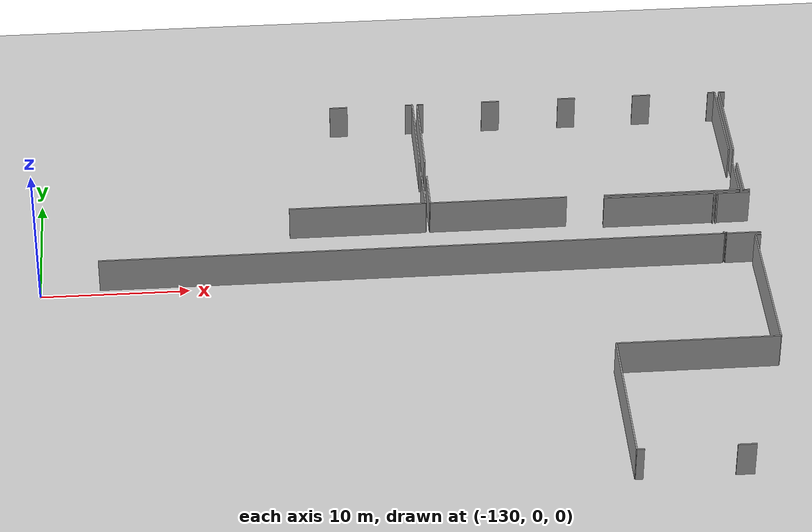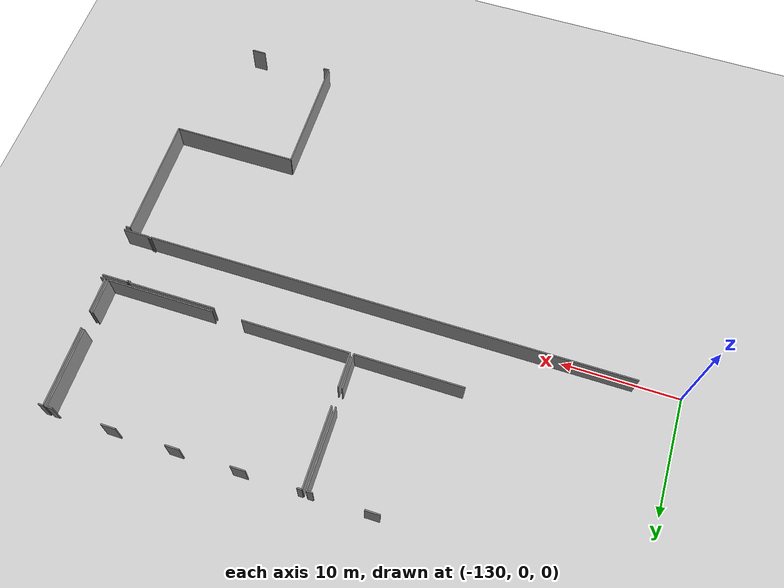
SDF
<sdf version="1.6">
 <world name="default">
  <model name="ground_plane">
   <static>1</static>
   <link name="link">
    <collision name="collision">
     <geometry><plane><normal>0 0 1</normal><size>100 100</size></plane></geometry>
     <surface><friction><ode><mu>100</mu><mu2>50</mu2></ode></friction></surface>
    </collision>
    <visual name="visual">
     <cast_shadows>0</cast_shadows>
     <geometry><plane><normal>0 0 1</normal><size>100 100</size></plane></geometry>
     <material>
      <script><uri>file://media/materials/scripts/gazebo.material</uri><name>Gazebo/Grey</name></script>
     </material>
    </visual>
   </link>
  </model>
  <model name="50037765_PLAN3">
   <static>1</static>
   <link name="Wall_4">
    <collision name="Wall_4_Collision">
     <geometry><box><size>9.34466127382 0.1 2.5</size></box></geometry>
     <pose>4.67233063691 0 1.25 0 0 0</pose>
    </collision>
    <visual name="Wall_4_Visual">
     <pose>4.67233063691 0 1.25 0 0 0</pose>
     <geometry><box><size>9.34466127382 0.1 2.5</size></box></geometry>
     <material>
      <script><uri>file://media/materials/scripts/gazebo.material</uri><name>Gazebo/Grey</name></script>
      <ambient>1 1 1 1</ambient>
     </material>
    </visual>
    <pose>32.053403148 -15.8197103623 0 0 0 3.14159265359</pose>
   </link>
   <link name="Wall_10">
    <collision name="Wall_10_Collision">
     <geometry><box><size>1.25107232047 0.1 2.5</size></box></geometry>
     <pose>0.625536160235 0 1.25 0 0 0</pose>
    </collision>
    <visual name="Wall_10_Visual">
     <pose>0.625536160235 0 1.25 0 0 0</pose>
     <geometry><box><size>1.25107232047 0.1 2.5</size></box></geometry>
     <material>
      <script><uri>file://media/materials/scripts/gazebo.material</uri><name>Gazebo/Grey</name></script>
      <ambient>1 1 1 1</ambient>
     </material>
    </visual>
    <pose>26.1226289803 -4.19345614448 0 0 0 0.0</pose>
   </link>
   <link name="Wall_11">
    <collision name="Wall_11_Collision">
     <geometry><box><size>0.496921248785 0.1 2.5</size></box></geometry>
     <pose>0.248460624392 0 1.25 0 0 0</pose>
    </collision>
    <visual name="Wall_11_Visual">
     <pose>0.248460624392 0 1.25 0 0 0</pose>
     <geometry><box><size>0.496921248785 0.1 2.5</size></box></geometry>
     <material>
      <script><uri>file://media/materials/scripts/gazebo.material</uri><name>Gazebo/Grey</name></script>
      <ambient>1 1 1 1</ambient>
     </material>
    </visual>
    <pose>31.5046292472 -4.19345614448 0 0 0 0.0</pose>
   </link>
   <link name="Wall_12">
    <collision name="Wall_12_Collision">
     <geometry><box><size>6.9729870559 0.1 2.5</size></box></geometry>
     <pose>3.48649352795 0 1.25 0 0 0</pose>
    </collision>
    <visual name="Wall_12_Visual">
     <pose>3.48649352795 0 1.25 0 0 0</pose>
     <geometry><box><size>6.9729870559 0.1 2.5</size></box></geometry>
     <material>
      <script><uri>file://media/materials/scripts/gazebo.material</uri><name>Gazebo/Grey</name></script>
      <ambient>1 1 1 1</ambient>
     </material>
    </visual>
    <pose>32.001550496 -4.19345614448 0 0 0 -1.57079632679</pose>
   </link>
   <link name="Wall_13">
    <collision name="Wall_13_Collision">
     <geometry><box><size>3.08793038245 0.1 2.5</size></box></geometry>
     <pose>1.54396519122 0 1.25 0 0 0</pose>
    </collision>
    <visual name="Wall_13_Visual">
     <pose>1.54396519122 0 1.25 0 0 0</pose>
     <geometry><box><size>3.08793038245 0.1 2.5</size></box></geometry>
     <material>
      <script><uri>file://media/materials/scripts/gazebo.material</uri><name>Gazebo/Grey</name></script>
      <ambient>1 1 1 1</ambient>
     </material>
    </visual>
    <pose>32.001550496 -12.7322153664 0 0 0 -1.55400349704</pose>
   </link>
   <link name="Wall_14">
    <collision name="Wall_14_Collision">
     <geometry><box><size>9.35533681983 0.1 2.5</size></box></geometry>
     <pose>4.67766840992 0 1.25 0 0 0</pose>
    </collision>
    <visual name="Wall_14_Visual">
     <pose>4.67766840992 0 1.25 0 0 0</pose>
     <geometry><box><size>9.35533681983 0.1 2.5</size></box></geometry>
     <material>
      <script><uri>file://media/materials/scripts/gazebo.material</uri><name>Gazebo/Grey</name></script>
      <ambient>1 1 1 1</ambient>
     </material>
    </visual>
    <pose>53.6591831936 -15.8190749131 0 0 0 3.14159265359</pose>
   </link>
   <link name="Wall_15">
    <collision name="Wall_15_Collision">
     <geometry><box><size>9.3924470512 0.1 2.5</size></box></geometry>
     <pose>4.6962235256 0 1.25 0 0 0</pose>
    </collision>
    <visual name="Wall_15_Visual">
     <pose>4.6962235256 0 1.25 0 0 0</pose>
     <geometry><box><size>9.3924470512 0.1 2.5</size></box></geometry>
     <material>
      <script><uri>file://media/materials/scripts/gazebo.material</uri><name>Gazebo/Grey</name></script>
      <ambient>1 1 1 1</ambient>
     </material>
    </visual>
    <pose>41.7422236908 -15.8190749131 0 0 0 3.14159265359</pose>
   </link>
   <link name="Wall_16">
    <collision name="Wall_16_Collision">
     <geometry><box><size>3.05821349821 0.1 2.5</size></box></geometry>
     <pose>1.52910674911 0 1.25 0 0 0</pose>
    </collision>
    <visual name="Wall_16_Visual">
     <pose>1.52910674911 0 1.25 0 0 0</pose>
     <geometry><box><size>3.05821349821 0.1 2.5</size></box></geometry>
     <material>
      <script><uri>file://media/materials/scripts/gazebo.material</uri><name>Gazebo/Grey</name></script>
      <ambient>1 1 1 1</ambient>
     </material>
    </visual>
    <pose>32.3497766396 -15.8190749131 0 0 0 1.57079632679</pose>
   </link>
   <link name="Wall_17">
    <collision name="Wall_17_Collision">
     <geometry><box><size>6.95809212742 0.1 2.5</size></box></geometry>
     <pose>3.47904606371 0 1.25 0 0 0</pose>
    </collision>
    <visual name="Wall_17_Visual">
     <pose>3.47904606371 0 1.25 0 0 0</pose>
     <geometry><box><size>6.95809212742 0.1 2.5</size></box></geometry>
     <material>
      <script><uri>file://media/materials/scripts/gazebo.material</uri><name>Gazebo/Grey</name></script>
      <ambient>1 1 1 1</ambient>
     </material>
    </visual>
    <pose>32.3497766396 -11.1520312133 0 0 0 1.57079632679</pose>
   </link>
   <link name="Wall_18">
    <collision name="Wall_18_Collision">
     <geometry><box><size>0.425750942053 0.1 2.5</size></box></geometry>
     <pose>0.212875471027 0 1.25 0 0 0</pose>
    </collision>
    <visual name="Wall_18_Visual">
     <pose>0.212875471027 0 1.25 0 0 0</pose>
     <geometry><box><size>0.425750942053 0.1 2.5</size></box></geometry>
     <material>
      <script><uri>file://media/materials/scripts/gazebo.material</uri><name>Gazebo/Grey</name></script>
      <ambient>1 1 1 1</ambient>
     </material>
    </visual>
    <pose>32.3497766396 -4.19393908584 0 0 0 0.0</pose>
   </link>
   <link name="Wall_19">
    <collision name="Wall_19_Collision">
     <geometry><box><size>1.25463083581 0.1 2.5</size></box></geometry>
     <pose>0.627315417903 0 1.25 0 0 0</pose>
    </collision>
    <visual name="Wall_19_Visual">
     <pose>0.627315417903 0 1.25 0 0 0</pose>
     <geometry><box><size>1.25463083581 0.1 2.5</size></box></geometry>
     <material>
      <script><uri>file://media/materials/scripts/gazebo.material</uri><name>Gazebo/Grey</name></script>
      <ambient>1 1 1 1</ambient>
     </material>
    </visual>
    <pose>36.9364487288 -4.19393908584 0 0 0 0.0</pose>
   </link>
   <link name="Wall_20">
    <collision name="Wall_20_Collision">
     <geometry><box><size>1.22972122845 0.1 2.5</size></box></geometry>
     <pose>0.614860614225 0 1.25 0 0 0</pose>
    </collision>
    <visual name="Wall_20_Visual">
     <pose>0.614860614225 0 1.25 0 0 0</pose>
     <geometry><box><size>1.22972122845 0.1 2.5</size></box></geometry>
     <material>
      <script><uri>file://media/materials/scripts/gazebo.material</uri><name>Gazebo/Grey</name></script>
      <ambient>1 1 1 1</ambient>
     </material>
    </visual>
    <pose>42.3789437564 -4.19393908584 0 0 0 0.0</pose>
   </link>
   <link name="Wall_21">
    <collision name="Wall_21_Collision">
     <geometry><box><size>1.26352712415 0.1 2.5</size></box></geometry>
     <pose>0.631763562074 0 1.25 0 0 0</pose>
    </collision>
    <visual name="Wall_21_Visual">
     <pose>0.631763562074 0 1.25 0 0 0</pose>
     <geometry><box><size>1.26352712415 0.1 2.5</size></box></geometry>
     <material>
      <script><uri>file://media/materials/scripts/gazebo.material</uri><name>Gazebo/Grey</name></script>
      <ambient>1 1 1 1</ambient>
     </material>
    </visual>
    <pose>47.7324759006 -4.19393908584 0 0 0 0.0</pose>
   </link>
   <link name="Wall_22">
    <collision name="Wall_22_Collision">
     <geometry><box><size>0.498700506453 0.1 2.5</size></box></geometry>
     <pose>0.249350253226 0 1.25 0 0 0</pose>
    </collision>
    <visual name="Wall_22_Visual">
     <pose>0.249350253226 0 1.25 0 0 0</pose>
     <geometry><box><size>0.498700506453 0.1 2.5</size></box></geometry>
     <material>
      <script><uri>file://media/materials/scripts/gazebo.material</uri><name>Gazebo/Grey</name></script>
      <ambient>1 1 1 1</ambient>
     </material>
    </visual>
    <pose>53.1475195242 -4.19393908584 0 0 0 0.0</pose>
   </link>
   <link name="Wall_23">
    <collision name="Wall_23_Collision">
     <geometry><box><size>6.90618863944 0.1 2.5</size></box></geometry>
     <pose>3.45309431972 0 1.25 0 0 0</pose>
    </collision>
    <visual name="Wall_23_Visual">
     <pose>3.45309431972 0 1.25 0 0 0</pose>
     <geometry><box><size>6.90618863944 0.1 2.5</size></box></geometry>
     <material>
      <script><uri>file://media/materials/scripts/gazebo.material</uri><name>Gazebo/Grey</name></script>
      <ambient>1 1 1 1</ambient>
     </material>
    </visual>
    <pose>53.6462200306 -4.19393908584 0 0 0 -1.57079632679</pose>
   </link>
   <link name="Wall_24">
    <collision name="Wall_24_Collision">
     <geometry><box><size>3.12758057625 0.1 2.5</size></box></geometry>
     <pose>1.56379028812 0 1.25 0 0 0</pose>
    </collision>
    <visual name="Wall_24_Visual">
     <pose>1.56379028812 0 1.25 0 0 0</pose>
     <geometry><box><size>3.12758057625 0.1 2.5</size></box></geometry>
     <material>
      <script><uri>file://media/materials/scripts/gazebo.material</uri><name>Gazebo/Grey</name></script>
      <ambient>1 1 1 1</ambient>
     </material>
    </visual>
    <pose>53.6462200306 -12.6915212018 0 0 0 -1.56665152547</pose>
   </link>
   <link name="Wall_40">
    <collision name="Wall_40_Collision">
     <geometry><box><size>42.2044239971 0.1 2.5</size></box></geometry>
     <pose>21.1022119986 0 1.25 0 0 0</pose>
    </collision>
    <visual name="Wall_40_Visual">
     <pose>21.1022119986 0 1.25 0 0 0</pose>
     <geometry><box><size>42.2044239971 0.1 2.5</size></box></geometry>
     <material>
      <script><uri>file://media/materials/scripts/gazebo.material</uri><name>Gazebo/Grey</name></script>
      <ambient>1 1 1 1</ambient>
     </material>
    </visual>
    <pose>51.9152564991 -20.6463788929 0 0 0 3.14159265359</pose>
   </link>
   <link name="Wall_49">
    <collision name="Wall_49_Collision">
     <geometry><box><size>7.59895532157 0.1 2.5</size></box></geometry>
     <pose>3.79947766078 0 1.25 0 0 0</pose>
    </collision>
    <visual name="Wall_49_Visual">
     <pose>3.79947766078 0 1.25 0 0 0</pose>
     <geometry><box><size>7.59895532157 0.1 2.5</size></box></geometry>
     <material>
      <script><uri>file://media/materials/scripts/gazebo.material</uri><name>Gazebo/Grey</name></script>
      <ambient>1 1 1 1</ambient>
     </material>
    </visual>
    <pose>44.2761407901 -16.1168718108 0 0 0 0.0</pose>
   </link>
   <link name="Wall_50">
    <collision name="Wall_50_Collision">
     <geometry><box><size>0.15380411644 0.1 2.5</size></box></geometry>
     <pose>0.0769020582199 0 1.25 0 0 0</pose>
    </collision>
    <visual name="Wall_50_Visual">
     <pose>0.0769020582199 0 1.25 0 0 0</pose>
     <geometry><box><size>0.15380411644 0.1 2.5</size></box></geometry>
     <material>
      <script><uri>file://media/materials/scripts/gazebo.material</uri><name>Gazebo/Grey</name></script>
      <ambient>1 1 1 1</ambient>
     </material>
    </visual>
    <pose>51.8750961117 -16.1168718108 0 0 0 -1.57079632679</pose>
   </link>
   <link name="Wall_51">
    <collision name="Wall_51_Collision">
     <geometry><box><size>0.180666680389 0.1 2.5</size></box></geometry>
     <pose>0.0903333401947 0 1.25 0 0 0</pose>
    </collision>
    <visual name="Wall_51_Visual">
     <pose>0.0903333401947 0 1.25 0 0 0</pose>
     <geometry><box><size>0.180666680389 0.1 2.5</size></box></geometry>
     <material>
      <script><uri>file://media/materials/scripts/gazebo.material</uri><name>Gazebo/Grey</name></script>
      <ambient>1 1 1 1</ambient>
     </material>
    </visual>
    <pose>51.8750961117 -20.4702323838 0 0 0 -1.34663376916</pose>
   </link>
   <link name="Wall_59">
    <collision name="Wall_59_Collision">
     <geometry><box><size>2.31862692144 0.1 2.5</size></box></geometry>
     <pose>1.15931346072 0 1.25 0 0 0</pose>
    </collision>
    <visual name="Wall_59_Visual">
     <pose>1.15931346072 0 1.25 0 0 0</pose>
     <geometry><box><size>2.31862692144 0.1 2.5</size></box></geometry>
     <material>
      <script><uri>file://media/materials/scripts/gazebo.material</uri><name>Gazebo/Grey</name></script>
      <ambient>1 1 1 1</ambient>
     </material>
    </visual>
    <pose>54.3917289936 -20.6445996353 0 0 0 3.14159265359</pose>
   </link>
   <link name="Wall_60">
    <collision name="Wall_60_Collision">
     <geometry><box><size>0.143103152463 0.1 2.5</size></box></geometry>
     <pose>0.0715515762317 0 1.25 0 0 0</pose>
    </collision>
    <visual name="Wall_60_Visual">
     <pose>0.0715515762317 0 1.25 0 0 0</pose>
     <geometry><box><size>0.143103152463 0.1 2.5</size></box></geometry>
     <material>
      <script><uri>file://media/materials/scripts/gazebo.material</uri><name>Gazebo/Grey</name></script>
      <ambient>1 1 1 1</ambient>
     </material>
    </visual>
    <pose>52.0731020722 -20.6445996353 0 0 0 1.57079632679</pose>
   </link>
   <link name="Wall_61">
    <collision name="Wall_61_Collision">
     <geometry><box><size>0.153753280506 0.1 2.5</size></box></geometry>
     <pose>0.0768766402532 0 1.25 0 0 0</pose>
    </collision>
    <visual name="Wall_61_Visual">
     <pose>0.0768766402532 0 1.25 0 0 0</pose>
     <geometry><box><size>0.153753280506 0.1 2.5</size></box></geometry>
     <material>
      <script><uri>file://media/materials/scripts/gazebo.material</uri><name>Gazebo/Grey</name></script>
      <ambient>1 1 1 1</ambient>
     </material>
    </visual>
    <pose>52.0731020722 -16.281605653 0 0 0 1.57079632679</pose>
   </link>
   <link name="Wall_62">
    <collision name="Wall_62_Collision">
     <geometry><box><size>2.25254020805 0.1 2.5</size></box></geometry>
     <pose>1.12627010402 0 1.25 0 0 0</pose>
    </collision>
    <visual name="Wall_62_Visual">
     <pose>1.12627010402 0 1.25 0 0 0</pose>
     <geometry><box><size>2.25254020805 0.1 2.5</size></box></geometry>
     <material>
      <script><uri>file://media/materials/scripts/gazebo.material</uri><name>Gazebo/Grey</name></script>
      <ambient>1 1 1 1</ambient>
     </material>
    </visual>
    <pose>52.0731020722 -16.1278523724 0 0 0 0.0</pose>
   </link>
   <link name="Wall_68">
    <collision name="Wall_68_Collision">
     <geometry><box><size>0.424480043719 0.1 2.5</size></box></geometry>
     <pose>0.212240021859 0 1.25 0 0 0</pose>
    </collision>
    <visual name="Wall_68_Visual">
     <pose>0.212240021859 0 1.25 0 0 0</pose>
     <geometry><box><size>0.424480043719 0.1 2.5</size></box></geometry>
     <material>
      <script><uri>file://media/materials/scripts/gazebo.material</uri><name>Gazebo/Grey</name></script>
      <ambient>1 1 1 1</ambient>
     </material>
    </visual>
    <pose>54.3721571593 -15.8521945237 0 0 0 3.14159265359</pose>
   </link>
   <link name="Wall_69">
    <collision name="Wall_69_Collision">
     <geometry><box><size>3.11997915727 0.1 2.5</size></box></geometry>
     <pose>1.55998957863 0 1.25 0 0 0</pose>
    </collision>
    <visual name="Wall_69_Visual">
     <pose>1.55998957863 0 1.25 0 0 0</pose>
     <geometry><box><size>3.11997915727 0.1 2.5</size></box></geometry>
     <material>
      <script><uri>file://media/materials/scripts/gazebo.material</uri><name>Gazebo/Grey</name></script>
      <ambient>1 1 1 1</ambient>
     </material>
    </visual>
    <pose>53.9476771156 -15.8521945237 0 0 0 1.57079632679</pose>
   </link>
   <link name="Wall_70">
    <collision name="Wall_70_Collision">
     <geometry><box><size>6.96681048999 0.1 2.5</size></box></geometry>
     <pose>3.483405245 0 1.25 0 0 0</pose>
    </collision>
    <visual name="Wall_70_Visual">
     <pose>3.483405245 0 1.25 0 0 0</pose>
     <geometry><box><size>6.96681048999 0.1 2.5</size></box></geometry>
     <material>
      <script><uri>file://media/materials/scripts/gazebo.material</uri><name>Gazebo/Grey</name></script>
      <ambient>1 1 1 1</ambient>
     </material>
    </visual>
    <pose>53.9476771156 -11.1712471961 0 0 0 1.57079632679</pose>
   </link>
   <link name="Wall_71">
    <collision name="Wall_71_Collision">
     <geometry><box><size>0.432867972727 0.1 2.5</size></box></geometry>
     <pose>0.216433986363 0 1.25 0 0 0</pose>
    </collision>
    <visual name="Wall_71_Visual">
     <pose>0.216433986363 0 1.25 0 0 0</pose>
     <geometry><box><size>0.432867972727 0.1 2.5</size></box></geometry>
     <material>
      <script><uri>file://media/materials/scripts/gazebo.material</uri><name>Gazebo/Grey</name></script>
      <ambient>1 1 1 1</ambient>
     </material>
    </visual>
    <pose>53.9476771156 -4.20443670609 0 0 0 0.0</pose>
   </link>
   <link name="Wall_88">
    <collision name="Wall_88_Collision">
     <geometry><box><size>0.39245340569 0.1 2.5</size></box></geometry>
     <pose>0.196226702845 0 1.25 0 0 0</pose>
    </collision>
    <visual name="Wall_88_Visual">
     <pose>0.196226702845 0 1.25 0 0 0</pose>
     <geometry><box><size>0.39245340569 0.1 2.5</size></box></geometry>
     <material>
      <script><uri>file://media/materials/scripts/gazebo.material</uri><name>Gazebo/Grey</name></script>
      <ambient>1 1 1 1</ambient>
     </material>
    </visual>
    <pose>54.3612274336 -20.9458025405 0 0 0 3.14159265359</pose>
   </link>
   <link name="Wall_89">
    <collision name="Wall_89_Collision">
     <geometry><box><size>10.7886559615 0.1 2.5</size></box></geometry>
     <pose>5.39432798073 0 1.25 0 0 0</pose>
    </collision>
    <visual name="Wall_89_Visual">
     <pose>5.39432798073 0 1.25 0 0 0</pose>
     <geometry><box><size>10.7886559615 0.1 2.5</size></box></geometry>
     <material>
      <script><uri>file://media/materials/scripts/gazebo.material</uri><name>Gazebo/Grey</name></script>
      <ambient>1 1 1 1</ambient>
     </material>
    </visual>
    <pose>53.9687740279 -20.9458025405 0 0 0 -1.57079632679</pose>
   </link>
   <link name="Wall_90">
    <collision name="Wall_90_Collision">
     <geometry><box><size>10.7840807275 0.1 2.5</size></box></geometry>
     <pose>5.39204036373 0 1.25 0 0 0</pose>
    </collision>
    <visual name="Wall_90_Visual">
     <pose>5.39204036373 0 1.25 0 0 0</pose>
     <geometry><box><size>10.7840807275 0.1 2.5</size></box></geometry>
     <material>
      <script><uri>file://media/materials/scripts/gazebo.material</uri><name>Gazebo/Grey</name></script>
      <ambient>1 1 1 1</ambient>
     </material>
    </visual>
    <pose>53.9687740279 -31.734458502 0 0 0 3.14159265359</pose>
   </link>
   <link name="Wall_91">
    <collision name="Wall_91_Collision">
     <geometry><box><size>10.4572056758 0.1 2.5</size></box></geometry>
     <pose>5.22860283792 0 1.25 0 0 0</pose>
    </collision>
    <visual name="Wall_91_Visual">
     <pose>5.22860283792 0 1.25 0 0 0</pose>
     <geometry><box><size>10.4572056758 0.1 2.5</size></box></geometry>
     <material>
      <script><uri>file://media/materials/scripts/gazebo.material</uri><name>Gazebo/Grey</name></script>
      <ambient>1 1 1 1</ambient>
     </material>
    </visual>
    <pose>43.1846933005 -31.734458502 0 0 0 -1.57079632679</pose>
   </link>
   <link name="Wall_92">
    <collision name="Wall_92_Collision">
     <geometry><box><size>0.49565035045 0.1 2.5</size></box></geometry>
     <pose>0.247825175225 0 1.25 0 0 0</pose>
    </collision>
    <visual name="Wall_92_Visual">
     <pose>0.247825175225 0 1.25 0 0 0</pose>
     <geometry><box><size>0.49565035045 0.1 2.5</size></box></geometry>
     <material>
      <script><uri>file://media/materials/scripts/gazebo.material</uri><name>Gazebo/Grey</name></script>
      <ambient>1 1 1 1</ambient>
     </material>
    </visual>
    <pose>43.1846933005 -42.1916641778 0 0 0 0.0</pose>
   </link>
   <link name="Wall_93">
    <collision name="Wall_93_Collision">
     <geometry><box><size>1.2131995501 0.1 2.5</size></box></geometry>
     <pose>0.606599775051 0 1.25 0 0 0</pose>
    </collision>
    <visual name="Wall_93_Visual">
     <pose>0.606599775051 0 1.25 0 0 0</pose>
     <geometry><box><size>1.2131995501 0.1 2.5</size></box></geometry>
     <material>
      <script><uri>file://media/materials/scripts/gazebo.material</uri><name>Gazebo/Grey</name></script>
      <ambient>1 1 1 1</ambient>
     </material>
    </visual>
    <pose>49.5521481359 -42.1916641778 0 0 0 0.0</pose>
   </link>
   <pose>-135.75 21.1468211655 0 0 0 0</pose>
  </model>
 </world>
</sdf>
